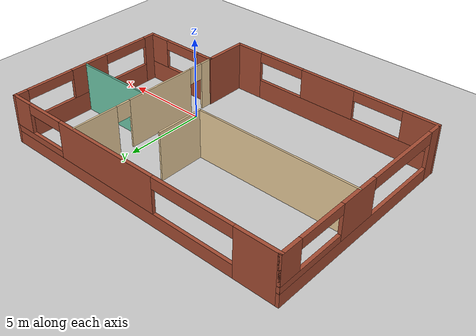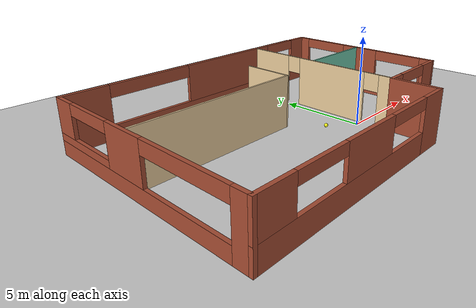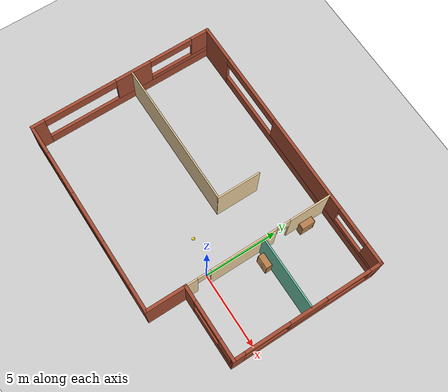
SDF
<sdf version="1.6">
 <world name="default">
  <model name="ground_plane">
   <static>1</static>
   <link name="link">
    <collision name="collision">
     <geometry><plane><normal>0 0 1</normal><size>100 100</size></plane></geometry>
     <surface>
      <contact><collide_bitmask>65535</collide_bitmask></contact>
      <friction><ode><mu>100</mu><mu2>50</mu2></ode></friction>
     </surface>
    </collision>
    <visual name="visual">
     <cast_shadows>0</cast_shadows>
     <geometry><plane><normal>0 0 1</normal><size>100 100</size></plane></geometry>
     <material>
      <script><uri>file://media/materials/scripts/gazebo.material</uri><name>Gazebo/Grey</name></script>
     </material>
    </visual>
   </link>
  </model>
  <model name="bookshelf_0">
   <static>1</static>
   <link name="link">
    <inertial><mass>1</mass></inertial>
    <collision name="back">
     <pose>0 0.005 0.6 0 -0 0</pose>
     <geometry><box><size>0.9 0.01 1.2</size></box></geometry>
    </collision>
    <visual name="visual1">
     <pose>0 0.005 0.6 0 -0 0</pose>
     <geometry><box><size>0.9 0.01 1.2</size></box></geometry>
     <material>
      <script><uri>file://media/materials/scripts/gazebo.material</uri><name>Gazebo/Wood</name></script>
     </material>
    </visual>
    <collision name="left_side">
     <pose>0.45 -0.195 0.6 0 -0 0</pose>
     <geometry><box><size>0.02 0.4 1.2</size></box></geometry>
    </collision>
    <visual name="visual2">
     <pose>0.45 -0.195 0.6 0 -0 0</pose>
     <geometry><box><size>0.02 0.4 1.2</size></box></geometry>
     <material>
      <script><uri>file://media/materials/scripts/gazebo.material</uri><name>Gazebo/Wood</name></script>
     </material>
    </visual>
    <collision name="right_side">
     <pose>-0.45 -0.195 0.6 0 -0 0</pose>
     <geometry><box><size>0.02 0.4 1.2</size></box></geometry>
    </collision>
    <visual name="visual3">
     <pose>-0.45 -0.195 0.6 0 -0 0</pose>
     <geometry><box><size>0.02 0.4 1.2</size></box></geometry>
     <material>
      <script><uri>file://media/materials/scripts/gazebo.material</uri><name>Gazebo/Wood</name></script>
     </material>
    </visual>
    <collision name="bottom">
     <pose>0 -0.195 0.03 0 -0 0</pose>
     <geometry><box><size>0.88 0.4 0.06</size></box></geometry>
    </collision>
    <visual name="visual4">
     <pose>0 -0.195 0.03 0 -0 0</pose>
     <geometry><box><size>0.88 0.4 0.06</size></box></geometry>
     <material>
      <script><uri>file://media/materials/scripts/gazebo.material</uri><name>Gazebo/Wood</name></script>
     </material>
    </visual>
    <collision name="top">
     <pose>0 -0.195 1.19 0 -0 0</pose>
     <geometry><box><size>0.88 0.4 0.02</size></box></geometry>
    </collision>
    <visual name="visual5">
     <pose>0 -0.195 1.19 0 -0 0</pose>
     <geometry><box><size>0.88 0.4 0.02</size></box></geometry>
     <material>
      <script><uri>file://media/materials/scripts/gazebo.material</uri><name>Gazebo/Wood</name></script>
     </material>
    </visual>
    <collision name="low_shelf">
     <pose>0 -0.195 0.43 0 -0 0</pose>
     <geometry><box><size>0.88 0.4 0.02</size></box></geometry>
    </collision>
    <visual name="visual6">
     <pose>0 -0.195 0.43 0 -0 0</pose>
     <geometry><box><size>0.88 0.4 0.02</size></box></geometry>
     <material>
      <script><uri>file://media/materials/scripts/gazebo.material</uri><name>Gazebo/Wood</name></script>
     </material>
    </visual>
    <collision name="high_shelf">
     <pose>0 -0.195 0.8 0 -0 0</pose>
     <geometry><box><size>0.88 0.4 0.02</size></box></geometry>
    </collision>
    <visual name="visual7">
     <pose>0 -0.195 0.8 0 -0 0</pose>
     <geometry><box><size>0.88 0.4 0.02</size></box></geometry>
     <material>
      <script><uri>file://media/materials/scripts/gazebo.material</uri><name>Gazebo/Wood</name></script>
     </material>
    </visual>
   </link>
   <pose>1.33182 3.46204 0 0 -0 0</pose>
  </model>
  <model name="bookshelf_1">
   <static>1</static>
   <link name="link">
    <inertial><mass>1</mass></inertial>
    <collision name="back">
     <pose>0 0.005 0.6 0 -0 0</pose>
     <geometry><box><size>0.9 0.01 1.2</size></box></geometry>
    </collision>
    <visual name="visual1">
     <pose>0 0.005 0.6 0 -0 0</pose>
     <geometry><box><size>0.9 0.01 1.2</size></box></geometry>
     <material>
      <script><uri>file://media/materials/scripts/gazebo.material</uri><name>Gazebo/Wood</name></script>
     </material>
    </visual>
    <collision name="left_side">
     <pose>0.45 -0.195 0.6 0 -0 0</pose>
     <geometry><box><size>0.02 0.4 1.2</size></box></geometry>
    </collision>
    <visual name="visual2">
     <pose>0.45 -0.195 0.6 0 -0 0</pose>
     <geometry><box><size>0.02 0.4 1.2</size></box></geometry>
     <material>
      <script><uri>file://media/materials/scripts/gazebo.material</uri><name>Gazebo/Wood</name></script>
     </material>
    </visual>
    <collision name="right_side">
     <pose>-0.45 -0.195 0.6 0 -0 0</pose>
     <geometry><box><size>0.02 0.4 1.2</size></box></geometry>
    </collision>
    <visual name="visual3">
     <pose>-0.45 -0.195 0.6 0 -0 0</pose>
     <geometry><box><size>0.02 0.4 1.2</size></box></geometry>
     <material>
      <script><uri>file://media/materials/scripts/gazebo.material</uri><name>Gazebo/Wood</name></script>
     </material>
    </visual>
    <collision name="bottom">
     <pose>0 -0.195 0.03 0 -0 0</pose>
     <geometry><box><size>0.88 0.4 0.06</size></box></geometry>
    </collision>
    <visual name="visual4">
     <pose>0 -0.195 0.03 0 -0 0</pose>
     <geometry><box><size>0.88 0.4 0.06</size></box></geometry>
     <material>
      <script><uri>file://media/materials/scripts/gazebo.material</uri><name>Gazebo/Wood</name></script>
     </material>
    </visual>
    <collision name="top">
     <pose>0 -0.195 1.19 0 -0 0</pose>
     <geometry><box><size>0.88 0.4 0.02</size></box></geometry>
    </collision>
    <visual name="visual5">
     <pose>0 -0.195 1.19 0 -0 0</pose>
     <geometry><box><size>0.88 0.4 0.02</size></box></geometry>
     <material>
      <script><uri>file://media/materials/scripts/gazebo.material</uri><name>Gazebo/Wood</name></script>
     </material>
    </visual>
    <collision name="low_shelf">
     <pose>0 -0.195 0.43 0 -0 0</pose>
     <geometry><box><size>0.88 0.4 0.02</size></box></geometry>
    </collision>
    <visual name="visual6">
     <pose>0 -0.195 0.43 0 -0 0</pose>
     <geometry><box><size>0.88 0.4 0.02</size></box></geometry>
     <material>
      <script><uri>file://media/materials/scripts/gazebo.material</uri><name>Gazebo/Wood</name></script>
     </material>
    </visual>
    <collision name="high_shelf">
     <pose>0 -0.195 0.8 0 -0 0</pose>
     <geometry><box><size>0.88 0.4 0.02</size></box></geometry>
    </collision>
    <visual name="visual7">
     <pose>0 -0.195 0.8 0 -0 0</pose>
     <geometry><box><size>0.88 0.4 0.02</size></box></geometry>
     <material>
      <script><uri>file://media/materials/scripts/gazebo.material</uri><name>Gazebo/Wood</name></script>
     </material>
    </visual>
   </link>
   <pose>0.564045 6.70754 0 0 -0 1.56615</pose>
  </model>
  <model name="new_building">
   <pose>-3.75518 2.01418 0 0 -0 0</pose>
   <link name="Wall_0">
    <pose>-2.425 -6.3 0 0 -0 3.14159</pose>
    <visual name="Wall_0_Visual_0">
     <pose>-5.8 0 1.5 0 -0 0</pose>
     <geometry><box><size>1.85 0.2 3</size></box></geometry>
     <material>
      <script><uri>file://media/materials/scripts/gazebo.material</uri><name>Gazebo/Bricks</name></script>
      <ambient>1 1 1 1</ambient>
     </material>
    </visual>
    <collision name="Wall_0_Collision_0">
     <geometry><box><size>1.85 0.2 3</size></box></geometry>
     <pose>-5.8 0 1.5 0 -0 0</pose>
    </collision>
    <visual name="Wall_0_Visual_1">
     <pose>0.925 0 0.6 0 -0 0</pose>
     <geometry><box><size>11.6 0.2 1.2</size></box></geometry>
     <material>
      <script><uri>file://media/materials/scripts/gazebo.material</uri><name>Gazebo/Bricks</name></script>
      <ambient>1 1 1 1</ambient>
     </material>
    </visual>
    <collision name="Wall_0_Collision_1">
     <geometry><box><size>11.6 0.2 1.2</size></box></geometry>
     <pose>0.925 0 0.6 0 -0 0</pose>
    </collision>
    <visual name="Wall_0_Visual_2">
     <pose>-0.125 0 2.1 0 -0 0</pose>
     <geometry><box><size>3.5 0.2 1.8</size></box></geometry>
     <material>
      <script><uri>file://media/materials/scripts/gazebo.material</uri><name>Gazebo/Bricks</name></script>
      <ambient>1 1 1 1</ambient>
     </material>
    </visual>
    <collision name="Wall_0_Collision_2">
     <geometry><box><size>3.5 0.2 1.8</size></box></geometry>
     <pose>-0.125 0 2.1 0 -0 0</pose>
    </collision>
    <visual name="Wall_0_Visual_3">
     <pose>5.675 0 2.1 0 -0 0</pose>
     <geometry><box><size>2.1 0.2 1.8</size></box></geometry>
     <material>
      <script><uri>file://media/materials/scripts/gazebo.material</uri><name>Gazebo/Bricks</name></script>
      <ambient>1 1 1 1</ambient>
     </material>
    </visual>
    <collision name="Wall_0_Collision_3">
     <geometry><box><size>2.1 0.2 1.8</size></box></geometry>
     <pose>5.675 0 2.1 0 -0 0</pose>
    </collision>
    <visual name="Wall_0_Visual_4">
     <pose>-3.375 0 2.7 0 -0 0</pose>
     <geometry><box><size>3 0.2 0.6</size></box></geometry>
     <material>
      <script><uri>file://media/materials/scripts/gazebo.material</uri><name>Gazebo/Bricks</name></script>
      <ambient>1 1 1 1</ambient>
     </material>
    </visual>
    <collision name="Wall_0_Collision_4">
     <geometry><box><size>3 0.2 0.6</size></box></geometry>
     <pose>-3.375 0 2.7 0 -0 0</pose>
    </collision>
    <visual name="Wall_0_Visual_5">
     <pose>3.125 0 2.7 0 -0 0</pose>
     <geometry><box><size>3 0.2 0.6</size></box></geometry>
     <material>
      <script><uri>file://media/materials/scripts/gazebo.material</uri><name>Gazebo/Bricks</name></script>
      <ambient>1 1 1 1</ambient>
     </material>
    </visual>
    <collision name="Wall_0_Collision_5">
     <geometry><box><size>3 0.2 0.6</size></box></geometry>
     <pose>3.125 0 2.7 0 -0 0</pose>
    </collision>
   </link>
   <link name="Wall_11">
    <collision name="Wall_11_Collision">
     <geometry><box><size>4.95 0.1 3</size></box></geometry>
     <pose>0 0 1.5 0 -0 0</pose>
    </collision>
    <visual name="Wall_11_Visual">
     <pose>0 0 1.5 0 -0 0</pose>
     <geometry><box><size>4.95 0.1 3</size></box></geometry>
     <material>
      <script><uri>file://media/materials/scripts/gazebo.material</uri><name>Gazebo/Grey</name></script>
      <ambient>0.435294 0.796078 0.67451 1</ambient>
     </material>
    </visual>
    <pose>6.63 1.55 0 0 -0 0</pose>
   </link>
   <link name="Wall_13">
    <collision name="Wall_13_Collision">
     <geometry><box><size>9.95 0.1 3</size></box></geometry>
     <pose>0 0 1.5 0 -0 0</pose>
    </collision>
    <visual name="Wall_13_Visual">
     <pose>0 0 1.5 0 -0 0</pose>
     <geometry><box><size>9.95 0.1 3</size></box></geometry>
     <material>
      <script><uri>file://media/materials/scripts/gazebo.material</uri><name>Gazebo/Grey</name></script>
      <ambient>0.921569 0.807843 0.615686 1</ambient>
     </material>
    </visual>
    <pose>-4.125 0.715 0 0 -0 0</pose>
   </link>
   <link name="Wall_15">
    <collision name="Wall_15_Collision">
     <geometry><box><size>2.95 0.1 3</size></box></geometry>
     <pose>0 0 1.5 0 -0 0</pose>
    </collision>
    <visual name="Wall_15_Visual">
     <pose>0 0 1.5 0 -0 0</pose>
     <geometry><box><size>2.95 0.1 3</size></box></geometry>
     <material>
      <script><uri>file://media/materials/scripts/gazebo.material</uri><name>Gazebo/Grey</name></script>
      <ambient>0.921569 0.807843 0.615686 1</ambient>
     </material>
    </visual>
    <pose>0.8 2.14 0 0 -0 1.5708</pose>
   </link>
   <link name="Wall_2">
    <collision name="Wall_2_Collision">
     <geometry><box><size>2.8 0.2 3</size></box></geometry>
     <pose>0 0 1.5 0 -0 0</pose>
    </collision>
    <visual name="Wall_2_Visual">
     <pose>0 0 1.5 0 -0 0</pose>
     <geometry><box><size>2.8 0.2 3</size></box></geometry>
     <material>
      <script><uri>file://media/materials/scripts/gazebo.material</uri><name>Gazebo/Bricks</name></script>
      <ambient>1 1 1 1</ambient>
     </material>
    </visual>
    <pose>4.2 -5 0 0 -0 1.5708</pose>
   </link>
   <link name="Wall_3">
    <pose>6.625 -3.7 0 0 -0 0</pose>
    <visual name="Wall_3_Visual_0">
     <pose>-1.975 0 1.5 0 -0 0</pose>
     <geometry><box><size>1.1 0.2 3</size></box></geometry>
     <material>
      <script><uri>file://media/materials/scripts/gazebo.material</uri><name>Gazebo/Bricks</name></script>
      <ambient>1 1 1 1</ambient>
     </material>
    </visual>
    <collision name="Wall_3_Collision_0">
     <geometry><box><size>1.1 0.2 3</size></box></geometry>
     <pose>-1.975 0 1.5 0 -0 0</pose>
    </collision>
    <visual name="Wall_3_Visual_1">
     <pose>0.55 0 0.6 0 -0 0</pose>
     <geometry><box><size>3.95 0.2 1.2</size></box></geometry>
     <material>
      <script><uri>file://media/materials/scripts/gazebo.material</uri><name>Gazebo/Bricks</name></script>
      <ambient>1 1 1 1</ambient>
     </material>
    </visual>
    <collision name="Wall_3_Collision_1">
     <geometry><box><size>3.95 0.2 1.2</size></box></geometry>
     <pose>0.55 0 0.6 0 -0 0</pose>
    </collision>
    <visual name="Wall_3_Visual_2">
     <pose>1.8 0 2.1 0 -0 0</pose>
     <geometry><box><size>1.45 0.2 1.8</size></box></geometry>
     <material>
      <script><uri>file://media/materials/scripts/gazebo.material</uri><name>Gazebo/Bricks</name></script>
      <ambient>1 1 1 1</ambient>
     </material>
    </visual>
    <collision name="Wall_3_Collision_2">
     <geometry><box><size>1.45 0.2 1.8</size></box></geometry>
     <pose>1.8 0 2.1 0 -0 0</pose>
    </collision>
    <visual name="Wall_3_Visual_3">
     <pose>-0.175 0 2.7 0 -0 0</pose>
     <geometry><box><size>2.5 0.2 0.6</size></box></geometry>
     <material>
      <script><uri>file://media/materials/scripts/gazebo.material</uri><name>Gazebo/Bricks</name></script>
      <ambient>1 1 1 1</ambient>
     </material>
    </visual>
    <collision name="Wall_3_Collision_3">
     <geometry><box><size>2.5 0.2 0.6</size></box></geometry>
     <pose>-0.175 0 2.7 0 -0 0</pose>
    </collision>
   </link>
   <link name="Wall_4">
    <pose>9.05 1.3 0 0 -0 1.5708</pose>
    <visual name="Wall_4_Visual_0">
     <pose>-4.675 0 1.5 0 -0 0</pose>
     <geometry><box><size>0.85 0.2 3</size></box></geometry>
     <material>
      <script><uri>file://media/materials/scripts/gazebo.material</uri><name>Gazebo/Bricks</name></script>
      <ambient>1 1 1 1</ambient>
     </material>
    </visual>
    <collision name="Wall_4_Collision_0">
     <geometry><box><size>0.85 0.2 3</size></box></geometry>
     <pose>-4.675 0 1.5 0 -0 0</pose>
    </collision>
    <visual name="Wall_4_Visual_1">
     <pose>0.425 0 0.6 0 -0 0</pose>
     <geometry><box><size>9.35 0.2 1.2</size></box></geometry>
     <material>
      <script><uri>file://media/materials/scripts/gazebo.material</uri><name>Gazebo/Bricks</name></script>
      <ambient>1 1 1 1</ambient>
     </material>
    </visual>
    <collision name="Wall_4_Collision_1">
     <geometry><box><size>9.35 0.2 1.2</size></box></geometry>
     <pose>0.425 0 0.6 0 -0 0</pose>
    </collision>
    <visual name="Wall_4_Visual_2">
     <pose>0 0 2.1 0 -0 0</pose>
     <geometry><box><size>2.5 0.2 1.8</size></box></geometry>
     <material>
      <script><uri>file://media/materials/scripts/gazebo.material</uri><name>Gazebo/Bricks</name></script>
      <ambient>1 1 1 1</ambient>
     </material>
    </visual>
    <collision name="Wall_4_Collision_2">
     <geometry><box><size>2.5 0.2 1.8</size></box></geometry>
     <pose>0 0 2.1 0 -0 0</pose>
    </collision>
    <visual name="Wall_4_Visual_3">
     <pose>4.675 0 2.1 0 -0 0</pose>
     <geometry><box><size>0.85 0.2 1.8</size></box></geometry>
     <material>
      <script><uri>file://media/materials/scripts/gazebo.material</uri><name>Gazebo/Bricks</name></script>
      <ambient>1 1 1 1</ambient>
     </material>
    </visual>
    <collision name="Wall_4_Collision_3">
     <geometry><box><size>0.85 0.2 1.8</size></box></geometry>
     <pose>4.675 0 2.1 0 -0 0</pose>
    </collision>
    <visual name="Wall_4_Visual_4">
     <pose>-2.75 0 2.7 0 -0 0</pose>
     <geometry><box><size>3 0.2 0.6</size></box></geometry>
     <material>
      <script><uri>file://media/materials/scripts/gazebo.material</uri><name>Gazebo/Bricks</name></script>
      <ambient>1 1 1 1</ambient>
     </material>
    </visual>
    <collision name="Wall_4_Collision_4">
     <geometry><box><size>3 0.2 0.6</size></box></geometry>
     <pose>-2.75 0 2.7 0 -0 0</pose>
    </collision>
    <visual name="Wall_4_Visual_5">
     <pose>2.75 0 2.7 0 -0 0</pose>
     <geometry><box><size>3 0.2 0.6</size></box></geometry>
     <material>
      <script><uri>file://media/materials/scripts/gazebo.material</uri><name>Gazebo/Bricks</name></script>
      <ambient>1 1 1 1</ambient>
     </material>
    </visual>
    <collision name="Wall_4_Collision_5">
     <geometry><box><size>3 0.2 0.6</size></box></geometry>
     <pose>2.75 0 2.7 0 -0 0</pose>
    </collision>
   </link>
   <link name="Wall_6">
    <pose>-9.05 0 0 0 -0 1.5708</pose>
    <visual name="Wall_6_Visual_0">
     <pose>-5.925 0 1.5 0 -0 0</pose>
     <geometry><box><size>0.95 0.2 3</size></box></geometry>
     <material>
      <script><uri>file://media/materials/scripts/gazebo.material</uri><name>Gazebo/Bricks</name></script>
      <ambient>1 1 1 1</ambient>
     </material>
    </visual>
    <collision name="Wall_6_Collision_0">
     <geometry><box><size>0.95 0.2 3</size></box></geometry>
     <pose>-5.925 0 1.5 0 -0 0</pose>
    </collision>
    <visual name="Wall_6_Visual_1">
     <pose>0.475 0 0.4 0 -0 0</pose>
     <geometry><box><size>11.85 0.2 0.8</size></box></geometry>
     <material>
      <script><uri>file://media/materials/scripts/gazebo.material</uri><name>Gazebo/Bricks</name></script>
      <ambient>1 1 1 1</ambient>
     </material>
    </visual>
    <collision name="Wall_6_Collision_1">
     <geometry><box><size>11.85 0.2 0.8</size></box></geometry>
     <pose>0.475 0 0.4 0 -0 0</pose>
    </collision>
    <visual name="Wall_6_Visual_2">
     <pose>0.8 0 1.9 0 -0 0</pose>
     <geometry><box><size>2.5 0.2 2.2</size></box></geometry>
     <material>
      <script><uri>file://media/materials/scripts/gazebo.material</uri><name>Gazebo/Bricks</name></script>
      <ambient>1 1 1 1</ambient>
     </material>
    </visual>
    <collision name="Wall_6_Collision_2">
     <geometry><box><size>2.5 0.2 2.2</size></box></geometry>
     <pose>0.8 0 1.9 0 -0 0</pose>
    </collision>
    <visual name="Wall_6_Visual_3">
     <pose>4.225 0 1 0 -0 0</pose>
     <geometry><box><size>4.35 0.2 0.4</size></box></geometry>
     <material>
      <script><uri>file://media/materials/scripts/gazebo.material</uri><name>Gazebo/Bricks</name></script>
      <ambient>1 1 1 1</ambient>
     </material>
    </visual>
    <collision name="Wall_6_Collision_3">
     <geometry><box><size>4.35 0.2 0.4</size></box></geometry>
     <pose>4.225 0 1 0 -0 0</pose>
    </collision>
    <visual name="Wall_6_Visual_4">
     <pose>5.725 0 2.1 0 -0 0</pose>
     <geometry><box><size>1.35 0.2 1.8</size></box></geometry>
     <material>
      <script><uri>file://media/materials/scripts/gazebo.material</uri><name>Gazebo/Bricks</name></script>
      <ambient>1 1 1 1</ambient>
     </material>
    </visual>
    <collision name="Wall_6_Collision_4">
     <geometry><box><size>1.35 0.2 1.8</size></box></geometry>
     <pose>5.725 0 2.1 0 -0 0</pose>
    </collision>
    <visual name="Wall_6_Visual_5">
     <pose>-2.95 0 2.65 0 -0 0</pose>
     <geometry><box><size>5 0.2 0.7</size></box></geometry>
     <material>
      <script><uri>file://media/materials/scripts/gazebo.material</uri><name>Gazebo/Bricks</name></script>
      <ambient>1 1 1 1</ambient>
     </material>
    </visual>
    <collision name="Wall_6_Collision_5">
     <geometry><box><size>5 0.2 0.7</size></box></geometry>
     <pose>-2.95 0 2.65 0 -0 0</pose>
    </collision>
    <visual name="Wall_6_Visual_6">
     <pose>3.55 0 2.7 0 -0 0</pose>
     <geometry><box><size>3 0.2 0.6</size></box></geometry>
     <material>
      <script><uri>file://media/materials/scripts/gazebo.material</uri><name>Gazebo/Bricks</name></script>
      <ambient>1 1 1 1</ambient>
     </material>
    </visual>
    <collision name="Wall_6_Collision_6">
     <geometry><box><size>3 0.2 0.6</size></box></geometry>
     <pose>3.55 0 2.7 0 -0 0</pose>
    </collision>
   </link>
   <link name="Wall_7">
    <pose>0 6.3 0 0 -0 0</pose>
    <visual name="Wall_7_Visual_0">
     <pose>-7.85 0 1.5 0 -0 0</pose>
     <geometry><box><size>2.6 0.2 3</size></box></geometry>
     <material>
      <script><uri>file://media/materials/scripts/gazebo.material</uri><name>Gazebo/Bricks</name></script>
      <ambient>1 1 1 1</ambient>
     </material>
    </visual>
    <collision name="Wall_7_Collision_0">
     <geometry><box><size>2.6 0.2 3</size></box></geometry>
     <pose>-7.85 0 1.5 0 -0 0</pose>
    </collision>
    <visual name="Wall_7_Visual_1">
     <pose>1.3 0 0.4 0 -0 0</pose>
     <geometry><box><size>15.7 0.2 0.8</size></box></geometry>
     <material>
      <script><uri>file://media/materials/scripts/gazebo.material</uri><name>Gazebo/Bricks</name></script>
      <ambient>1 1 1 1</ambient>
     </material>
    </visual>
    <collision name="Wall_7_Collision_1">
     <geometry><box><size>15.7 0.2 0.8</size></box></geometry>
     <pose>1.3 0 0.4 0 -0 0</pose>
    </collision>
    <visual name="Wall_7_Visual_2">
     <pose>1.825 0 1.9 0 -0 0</pose>
     <geometry><box><size>6.75 0.2 2.2</size></box></geometry>
     <material>
      <script><uri>file://media/materials/scripts/gazebo.material</uri><name>Gazebo/Bricks</name></script>
      <ambient>1 1 1 1</ambient>
     </material>
    </visual>
    <collision name="Wall_7_Collision_2">
     <geometry><box><size>6.75 0.2 2.2</size></box></geometry>
     <pose>1.825 0 1.9 0 -0 0</pose>
    </collision>
    <visual name="Wall_7_Visual_3">
     <pose>7.175 0 1 0 -0 0</pose>
     <geometry><box><size>3.95 0.2 0.4</size></box></geometry>
     <material>
      <script><uri>file://media/materials/scripts/gazebo.material</uri><name>Gazebo/Bricks</name></script>
      <ambient>1 1 1 1</ambient>
     </material>
    </visual>
    <collision name="Wall_7_Collision_3">
     <geometry><box><size>3.95 0.2 0.4</size></box></geometry>
     <pose>7.175 0 1 0 -0 0</pose>
    </collision>
    <visual name="Wall_7_Visual_4">
     <pose>8.425 0 2.1 0 -0 0</pose>
     <geometry><box><size>1.45 0.2 1.8</size></box></geometry>
     <material>
      <script><uri>file://media/materials/scripts/gazebo.material</uri><name>Gazebo/Bricks</name></script>
      <ambient>1 1 1 1</ambient>
     </material>
    </visual>
    <collision name="Wall_7_Collision_4">
     <geometry><box><size>1.45 0.2 1.8</size></box></geometry>
     <pose>8.425 0 2.1 0 -0 0</pose>
    </collision>
    <visual name="Wall_7_Visual_5">
     <pose>-4.05 0 2.65 0 -0 0</pose>
     <geometry><box><size>5 0.2 0.7</size></box></geometry>
     <material>
      <script><uri>file://media/materials/scripts/gazebo.material</uri><name>Gazebo/Bricks</name></script>
      <ambient>1 1 1 1</ambient>
     </material>
    </visual>
    <collision name="Wall_7_Collision_5">
     <geometry><box><size>5 0.2 0.7</size></box></geometry>
     <pose>-4.05 0 2.65 0 -0 0</pose>
    </collision>
    <visual name="Wall_7_Visual_6">
     <pose>6.45 0 2.7 0 -0 0</pose>
     <geometry><box><size>2.5 0.2 0.6</size></box></geometry>
     <material>
      <script><uri>file://media/materials/scripts/gazebo.material</uri><name>Gazebo/Bricks</name></script>
      <ambient>1 1 1 1</ambient>
     </material>
    </visual>
    <collision name="Wall_7_Collision_6">
     <geometry><box><size>2.5 0.2 0.6</size></box></geometry>
     <pose>6.45 0 2.7 0 -0 0</pose>
    </collision>
   </link>
   <link name="Wall_9">
    <pose>4.2 1.275 0 0 -0 1.5708</pose>
    <visual name="Wall_9_Visual_0">
     <pose>-4.6094 0 1.5 0 -0 0</pose>
     <geometry><box><size>0.831207 0.1 3</size></box></geometry>
     <material>
      <script><uri>file://media/materials/scripts/gazebo.material</uri><name>Gazebo/Grey</name></script>
      <ambient>0.921569 0.807843 0.615686 1</ambient>
     </material>
    </visual>
    <collision name="Wall_9_Collision_0">
     <geometry><box><size>0.831207 0.1 3</size></box></geometry>
     <pose>-4.6094 0 1.5 0 -0 0</pose>
    </collision>
    <visual name="Wall_9_Visual_1">
     <pose>-1.0165 0 1.5 0 -0 0</pose>
     <geometry><box><size>4.55458 0.1 3</size></box></geometry>
     <material>
      <script><uri>file://media/materials/scripts/gazebo.material</uri><name>Gazebo/Grey</name></script>
      <ambient>0.921569 0.807843 0.615686 1</ambient>
     </material>
    </visual>
    <collision name="Wall_9_Collision_1">
     <geometry><box><size>4.55458 0.1 3</size></box></geometry>
     <pose>-1.0165 0 1.5 0 -0 0</pose>
    </collision>
    <visual name="Wall_9_Visual_2">
     <pose>3.59289 0 1.5 0 -0 0</pose>
     <geometry><box><size>2.86422 0.1 3</size></box></geometry>
     <material>
      <script><uri>file://media/materials/scripts/gazebo.material</uri><name>Gazebo/Grey</name></script>
      <ambient>0.921569 0.807843 0.615686 1</ambient>
     </material>
    </visual>
    <collision name="Wall_9_Collision_2">
     <geometry><box><size>2.86422 0.1 3</size></box></geometry>
     <pose>3.59289 0 1.5 0 -0 0</pose>
    </collision>
    <visual name="Wall_9_Visual_3">
     <pose>-3.74379 0 2.5 0 -0 0</pose>
     <geometry><box><size>0.9 0.1 1</size></box></geometry>
     <material>
      <script><uri>file://media/materials/scripts/gazebo.material</uri><name>Gazebo/Grey</name></script>
      <ambient>0.921569 0.807843 0.615686 1</ambient>
     </material>
    </visual>
    <collision name="Wall_9_Collision_3">
     <geometry><box><size>0.9 0.1 1</size></box></geometry>
     <pose>-3.74379 0 2.5 0 -0 0</pose>
    </collision>
    <visual name="Wall_9_Visual_4">
     <pose>1.71079 0 2.5 0 -0 0</pose>
     <geometry><box><size>0.9 0.1 1</size></box></geometry>
     <material>
      <script><uri>file://media/materials/scripts/gazebo.material</uri><name>Gazebo/Grey</name></script>
      <ambient>0.921569 0.807843 0.615686 1</ambient>
     </material>
    </visual>
    <collision name="Wall_9_Collision_4">
     <geometry><box><size>0.9 0.1 1</size></box></geometry>
     <pose>1.71079 0 2.5 0 -0 0</pose>
    </collision>
   </link>
   <static>1</static>
  </model>
  <model name="my_ball">
   <link name="link_0">
    <inertial>
     <mass>0.5</mass>
     <inertia><ixx>0.1</ixx><ixy>0</ixy><ixz>0</ixz><iyy>0.1</iyy><iyz>0</iyz><izz>0.1</izz></inertia>
    </inertial>
    <visual name="visual">
     <geometry><sphere><radius>0.1</radius></sphere></geometry>
     <material>
      <lighting>1</lighting>
      <script><uri>file://media/materials/scripts/gazebo.material</uri><name>Gazebo/Grey</name></script>
      <shader type="pixel"><normal_map>__default__</normal_map></shader>
      <ambient>1 1 1 1</ambient>
      <diffuse>1 1 0.1 1</diffuse>
      <specular>1 1 1 1</specular>
      <emissive>1 1 1 1</emissive>
     </material>
    </visual>
    <collision name="collision">
     <geometry><sphere><radius>0.1</radius></sphere></geometry>
     <surface>
      <friction>
       <ode><mu>1</mu><mu2>1</mu2><fdir1>0 0 0</fdir1><slip1>0</slip1><slip2>0</slip2></ode>
       <torsional>
        <coefficient>1</coefficient>
        <patch_radius>0</patch_radius>
        <surface_radius>0</surface_radius>
        <use_patch_radius>1</use_patch_radius>
        <ode><slip>0</slip></ode>
       </torsional>
      </friction>
      <bounce><restitution_coefficient>0</restitution_coefficient><threshold>1e+06</threshold></bounce>
      <contact>
       <collide_without_contact>0</collide_without_contact>
       <collide_without_contact_bitmask>1</collide_without_contact_bitmask>
       <collide_bitmask>1</collide_bitmask>
       <ode>
        <soft_cfm>0</soft_cfm>
        <soft_erp>0.2</soft_erp>
        <kp>1e+13</kp>
        <kd>1</kd>
        <max_vel>0.01</max_vel>
        <min_depth>0</min_depth>
       </ode>
       <bullet>
        <split_impulse>1</split_impulse>
        <split_impulse_penetration_threshold>-0.01</split_impulse_penetration_threshold>
        <soft_cfm>0</soft_cfm>
        <soft_erp>0.2</soft_erp>
        <kp>1e+13</kp>
        <kd>1</kd>
       </bullet>
      </contact>
     </surface>
    </collision>
   </link>
   <static>0</static>
   <pose>-2.26901 0.527956 0.5 0 -0 0</pose>
  </model>
 </world>
</sdf>
